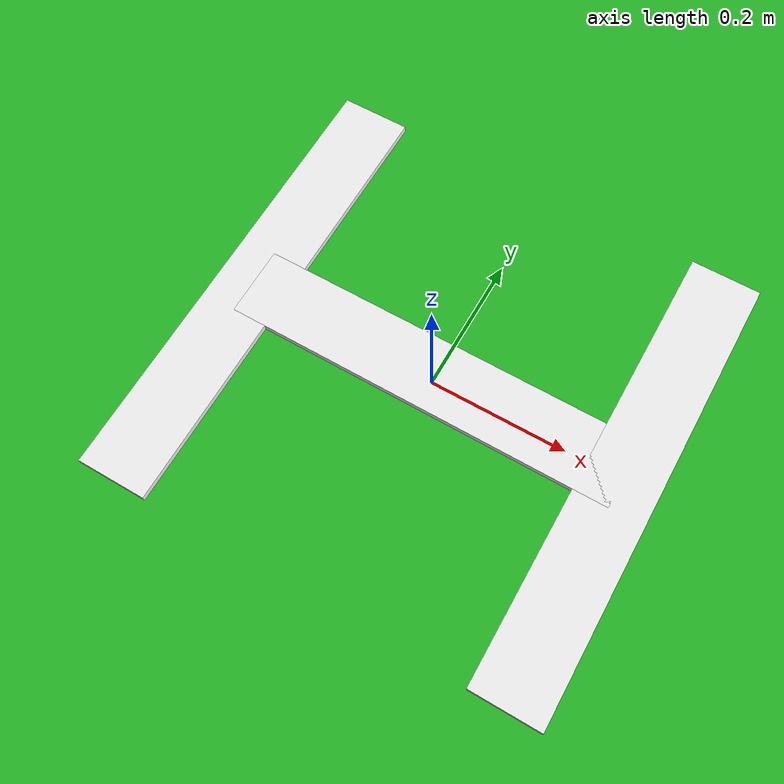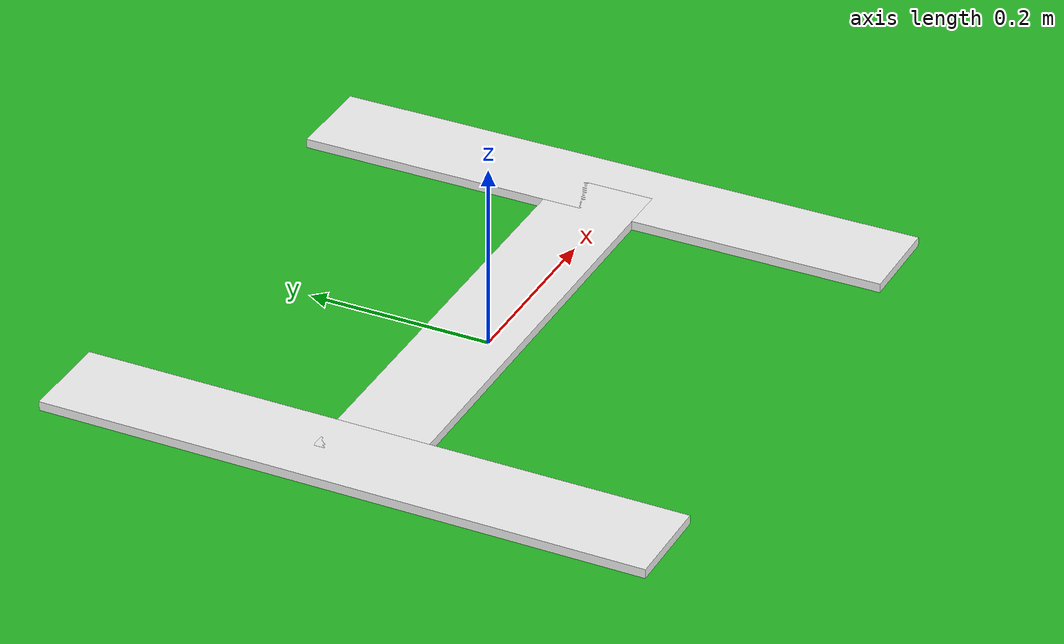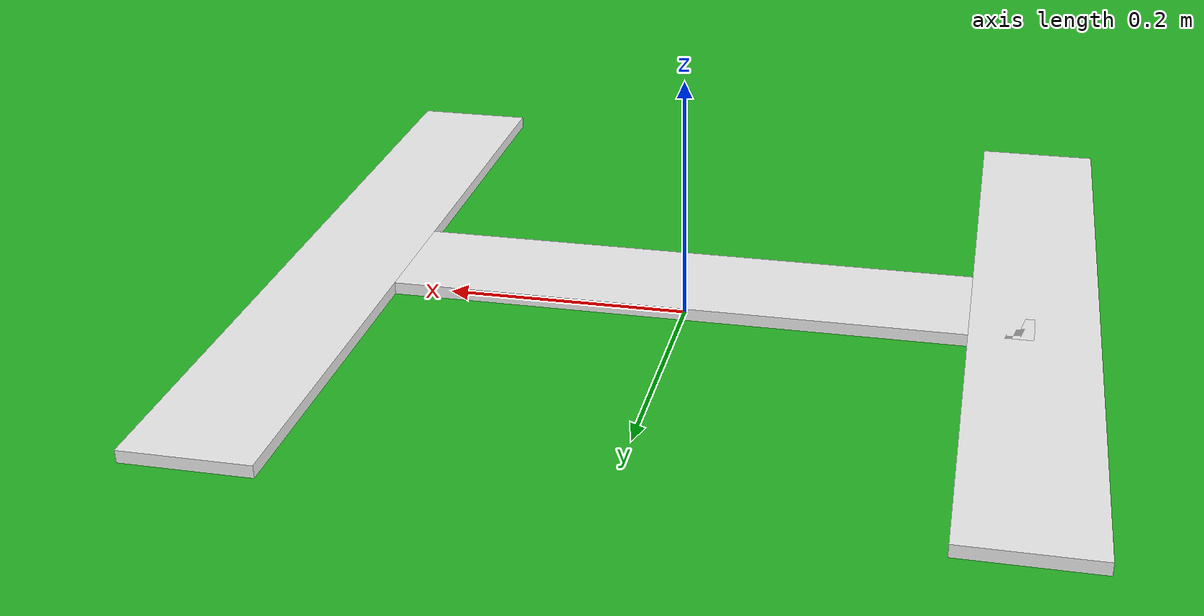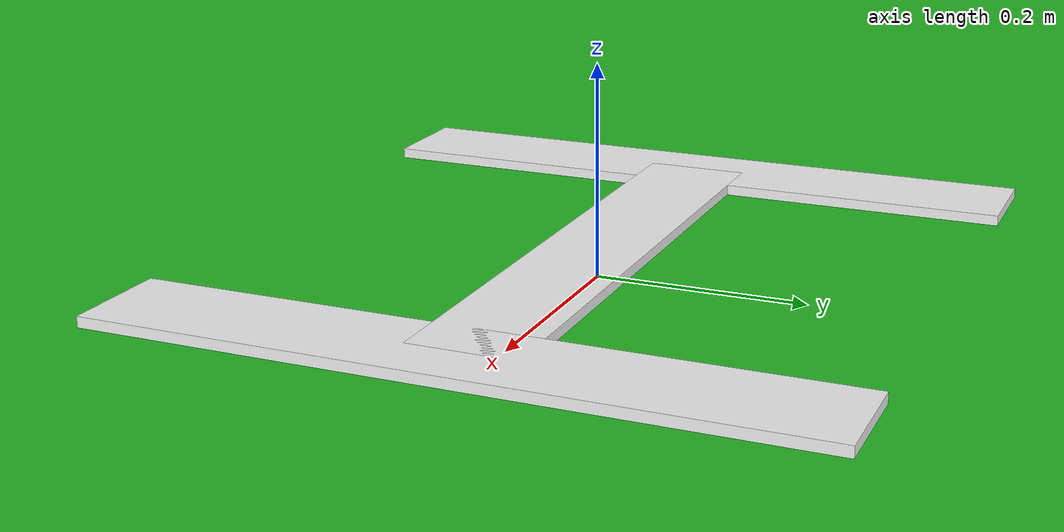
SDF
<?xml version="1.0" ?>
<sdf version="1.9">
  <model name="home_marker">
    <static>true</static>
    <link name="link">

      <!-- Yeşil daire zemin (r=2m) -->
      <visual name="disc">
        <pose>0 0 0.01 0 0 0</pose>
        <geometry><cylinder><radius>2.0</radius><length>0.02</length></cylinder></geometry>
        <material>
          <ambient>0.15 0.72 0.15 1</ambient>
          <diffuse>0.15 0.72 0.15 1</diffuse>
          <emissive>0.0 0.0 0.0 1</emissive>
          <specular>0.0 0.0 0.0 1</specular>
        </material>
        <cast_shadows>false</cast_shadows>
      </visual>

      <!-- H - sol ayak (Y yonunde uzaniyor, zemine basik) -->
      <visual name="h_left">
        <pose>-0.28 0 0.02 0 0 0</pose>
        <geometry><box><size>0.10 0.65 0.02</size></box></geometry>
        <material>
          <ambient>0.95 0.95 0.95 1</ambient>
          <diffuse>0.95 0.95 0.95 1</diffuse>
          <emissive>0.5 0.5 0.5 1</emissive>
        </material>
        <cast_shadows>false</cast_shadows>
      </visual>

      <!-- H - sag ayak (Y yonunde uzaniyor, zemine basik) -->
      <visual name="h_right">
        <pose>0.28 0 0.02 0 0 0</pose>
        <geometry><box><size>0.10 0.65 0.02</size></box></geometry>
        <material>
          <ambient>0.95 0.95 0.95 1</ambient>
          <diffuse>0.95 0.95 0.95 1</diffuse>
          <emissive>0.5 0.5 0.5 1</emissive>
        </material>
        <cast_shadows>false</cast_shadows>
      </visual>

      <!-- H - orta kopru (X yonunde uzaniyor, zemine basik) -->
      <visual name="h_mid">
        <pose>0 0 0.02 0 0 0</pose>
        <geometry><box><size>0.56 0.10 0.02</size></box></geometry>
        <material>
          <ambient>0.95 0.95 0.95 1</ambient>
          <diffuse>0.95 0.95 0.95 1</diffuse>
          <emissive>0.5 0.5 0.5 1</emissive>
        </material>
        <cast_shadows>false</cast_shadows>
      </visual>

      <collision name="c">
        <pose>0 0 0.01 0 0 0</pose>
        <geometry><cylinder><radius>2.0</radius><length>0.02</length></cylinder></geometry>
      </collision>
    </link>
  </model>
</sdf>
